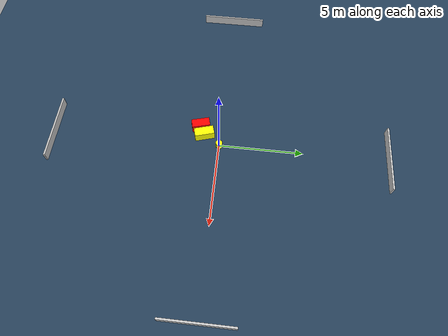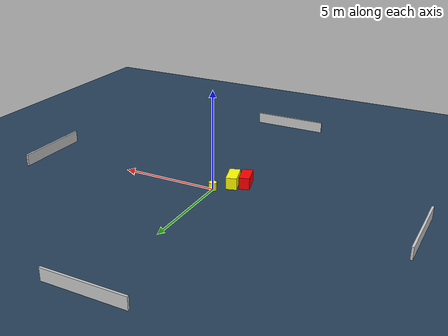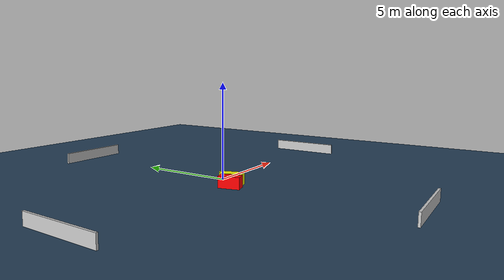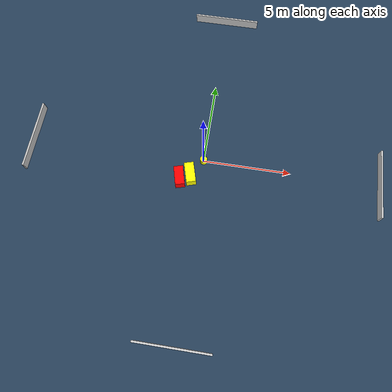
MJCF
<?xml version="1.0" ?>
<mujoco model="generated_environment">
  <option timestep="0.01" integrator="RK4" cone="elliptic"/>
  <default>
    <geom density="1"/>
  </default>
  <asset>
    <texture builtin="gradient" height="3072" name="skybox" rgb1="0.3 0.5 0.7" rgb2="0 0 0" type="skybox" width="512"/>
    <texture builtin="checker" height="300" name="groundplane" rgb1="0.2 0.3 0.4" rgb2="0.1 0.2 0.3" type="2d" width="300"/>
    <material name="groundplane" reflectance="0.2" texrepeat="5 5" texture="groundplane"/>
  </asset>
  <worldbody>
    <light dir="0 0 -1" directional="true" pos="0 0 1.5"/>
    <geom condim="3" friction="0.5 0.005 0.001" material="groundplane" name="floor" pos="0 0 0" size="0 0 0.05" type="plane"/>
    <body name="walls">
      <geom name="wall_1" condim="4" pos="-10.0 0.0 0.3" rgba="0.800000011920929 0.800000011920929 0.800000011920929 1.0" size="0.05 2.0 0.3" type="box"/>
      <geom name="wall_2" condim="4" pos="10.0 0.0 0.3" rgba="0.800000011920929 0.800000011920929 0.800000011920929 1.0" size="0.05 2.0 0.3" type="box"/>
      <geom name="wall_3" condim="4" pos="0.0 -10.0 0.3" rgba="0.800000011920929 0.800000011920929 0.800000011920929 1.0" size="2.0 0.05 0.3" type="box"/>
      <geom name="wall_4" condim="4" pos="0.0 10.0 0.3" rgba="0.800000011920929 0.800000011920929 0.800000011920929 1.0" size="2.0 0.05 0.3" type="box"/>
    </body>
    <body name="robot">
      <joint name="joint_x" type="slide" pos="0 0 0" axis="1 0 0"/>
      <joint name="joint_y" type="slide" pos="0 0 0" axis="0 1 0"/>
      <geom name="robot" type="cylinder" pos="0.0 0.0 0.2" size="0.2 0.2 0.0" mass="5.0" friction="1.0 0.005 0.0001" condim="4" rgba="1.0 1.0 0.0 1.0"/>
    </body>
    <body name="obstacle_1_movable">
      <geom name="obstacle_1_movable" condim="4" pos="-0.6249584304132699 -0.9674096591518809 0.3" euler="0 0 106.15456170652101" friction="0.0 0.005 0.001" rgba="1.0 1.0 0.0 1.0" size="0.5812646448516608 0.27098785995601726 0.3" type="box" mass="0.1"/>
      <joint type="free"/>
    </body>
    <body name="obstacle_2_static">
      <geom name="obstacle_2_static" condim="4" pos="-1.1945566274749457 -1.2384461102472075 0.3" euler="0 0 285.0638780279158" friction="0.0 0.005 0.001" rgba="1.0 0.0 0.0 1.0" size="0.5423936242264447 0.2656224346738301 0.3" type="box"/>
    </body>
  </worldbody>
  <actuator>
    <motor name="actuator_x" joint="joint_x" gear="1" ctrlrange="-1 1"/>
    <motor name="actuator_y" joint="joint_y" gear="1" ctrlrange="-1 1"/>
  </actuator>
</mujoco>
